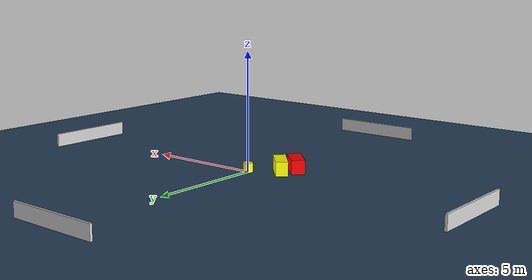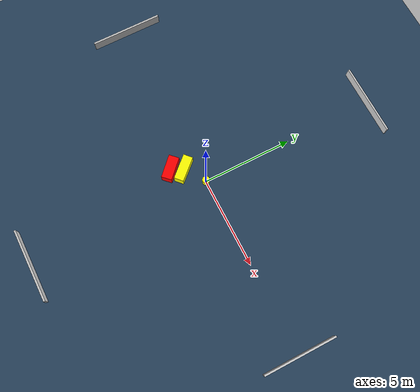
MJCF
<?xml version="1.0" ?>
<mujoco model="generated_environment">
  <option timestep="0.01" integrator="RK4" cone="elliptic"/>
  <default>
    <geom density="1"/>
  </default>
  <asset>
    <texture builtin="gradient" height="3072" name="skybox" rgb1="0.3 0.5 0.7" rgb2="0 0 0" type="skybox" width="512"/>
    <texture builtin="checker" height="300" name="groundplane" rgb1="0.2 0.3 0.4" rgb2="0.1 0.2 0.3" type="2d" width="300"/>
    <material name="groundplane" reflectance="0.2" texrepeat="5 5" texture="groundplane"/>
  </asset>
  <worldbody>
    <light dir="0 0 -1" directional="true" pos="0 0 1.5"/>
    <geom condim="3" friction="0.5 0.005 0.001" material="groundplane" name="floor" pos="0 0 0" size="0 0 0.05" type="plane"/>
    <body name="walls">
      <geom name="wall_1" condim="4" pos="-10.0 0.0 0.3" rgba="0.800000011920929 0.800000011920929 0.800000011920929 1.0" size="0.05 2.0 0.3" type="box"/>
      <geom name="wall_2" condim="4" pos="10.0 0.0 0.3" rgba="0.800000011920929 0.800000011920929 0.800000011920929 1.0" size="0.05 2.0 0.3" type="box"/>
      <geom name="wall_3" condim="4" pos="0.0 -10.0 0.3" rgba="0.800000011920929 0.800000011920929 0.800000011920929 1.0" size="2.0 0.05 0.3" type="box"/>
      <geom name="wall_4" condim="4" pos="0.0 10.0 0.3" rgba="0.800000011920929 0.800000011920929 0.800000011920929 1.0" size="2.0 0.05 0.3" type="box"/>
    </body>
    <body name="robot">
      <joint name="joint_x" type="slide" pos="0 0 0" axis="1 0 0"/>
      <joint name="joint_y" type="slide" pos="0 0 0" axis="0 1 0"/>
      <geom name="robot" type="cylinder" pos="0.0 0.0 0.2" size="0.2 0.2 0.0" mass="5.0" friction="1.0 0.005 0.0001" condim="4" rgba="1.0 1.0 0.0 1.0"/>
    </body>
    <body name="obstacle_1_movable">
      <geom name="obstacle_1_movable" condim="4" pos="-1.086159682900856 -0.7881739263587142 0.3" euler="0 0 222.39272878108093" friction="0.0 0.005 0.001" rgba="1.0 1.0 0.0 1.0" size="0.2615171477927354 0.6983959997357587 0.3" type="box" mass="0.1"/>
      <joint type="free"/>
    </body>
    <body name="obstacle_2_static">
      <geom name="obstacle_2_static" condim="4" pos="-1.4228473292045738 -1.4015928570357477 0.3" euler="0 0 315.48981460292885" friction="0.0 0.005 0.001" rgba="1.0 0.0 0.0 1.0" size="0.6418503764539051 0.28561588572223423 0.3" type="box"/>
    </body>
  </worldbody>
  <actuator>
    <motor name="actuator_x" joint="joint_x" gear="1" ctrlrange="-1 1"/>
    <motor name="actuator_y" joint="joint_y" gear="1" ctrlrange="-1 1"/>
  </actuator>
</mujoco>
